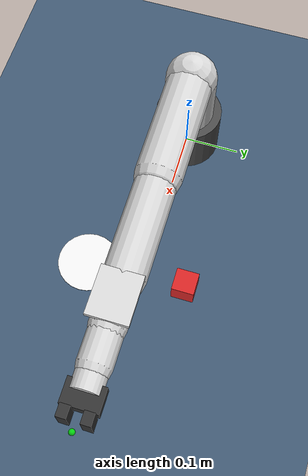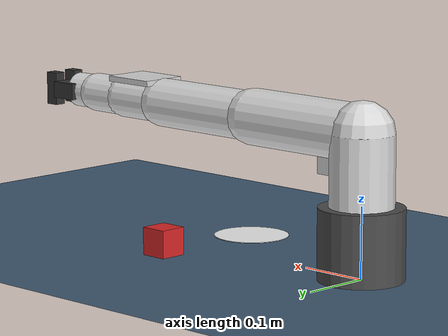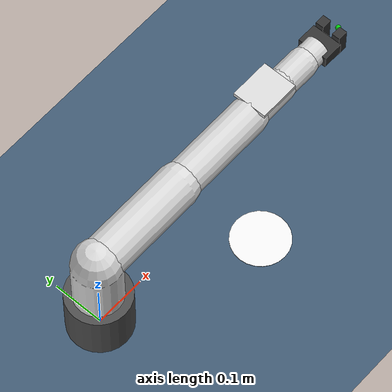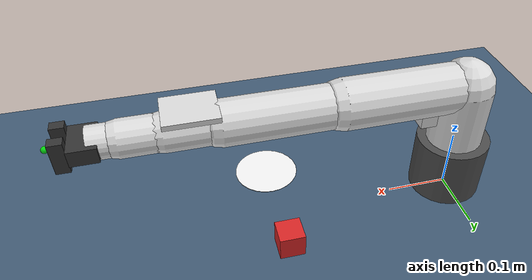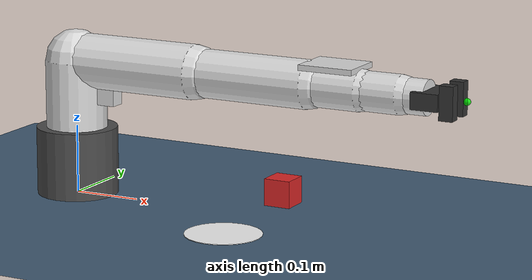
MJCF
<mujoco model="easytrainer_tutorial_world">
  <compiler angle="radian" autolimits="true"/>

  <option timestep="0.002" iterations="50" solver="Newton" tolerance="1e-8" gravity="0 0 -9.81"/>

  <visual>
    <headlight diffuse="0.6 0.6 0.6" ambient="0.3 0.3 0.3" specular="0 0 0"/>
    <rgba haze="0.15 0.25 0.35 1"/>
    <global azimuth="135" elevation="-25"/>
  </visual>

  <default>
    <default class="arm_link">
      <geom type="capsule" rgba="0.85 0.85 0.85 1" mass="0.5"
            contype="8" conaffinity="3" friction="1.0 0.005 0.001"/>
      <joint type="hinge" damping="2.0" armature="0.05" frictionloss="0.05"/>
    </default>
    <default class="arm_visual">
      <geom rgba="0.85 0.85 0.85 1" mass="0.0" contype="0" conaffinity="0"/>
    </default>
    <default class="gripper_finger">
      <!-- y두께 0.004 → 0.008로 키워 contact tolerance ↑ (정렬 살짝 어긋나도
           cube 옆면과 안정적으로 닿도록). 마찰은 그대로 — combined 마찰 행렬에서
           cube 쪽 값이 max로 적용되도록 cube friction을 별도 상향. -->
      <geom type="box" size="0.010 0.008 0.024" rgba="0.2 0.2 0.2 1" mass="0.03"
            contype="4" conaffinity="3" friction="2.0 0.10 0.005" condim="6"/>
    </default>
  </default>

  <asset>
    <texture type="skybox" builtin="gradient" rgb1="0.5 0.7 0.9" rgb2="0.1 0.2 0.4" width="512" height="512"/>
    <texture name="floor_tex" type="2d" builtin="checker" rgb1="0.2 0.3 0.4" rgb2="0.3 0.4 0.5" width="300" height="300"/>
    <material name="floor_mat" texture="floor_tex" texrepeat="2 2" reflectance="0.1"/>
    <material name="cube_mat" rgba="0.85 0.15 0.15 1"/>
    <material name="marker_mat" rgba="0.95 0.55 0.10 1"/>
    <material name="plate_mat" rgba="0.95 0.95 0.95 1" reflectance="0.05"/>
  </asset>

  <worldbody>
    <light name="top_light" pos="0 0 2.0" dir="0 0 -1" diffuse="0.6 0.6 0.6" specular="0.1 0.1 0.1"/>
    <light name="side_light" pos="0.8 0.8 1.5" dir="-0.5 -0.5 -1" diffuse="0.3 0.3 0.3"/>

    <geom name="floor" type="plane" size="3 3 0.1" material="floor_mat"
          contype="1" conaffinity="14" friction="1.0 0.005 0.001"/>

    <!-- Robot arm: simple 6DOF kinematic chain mounted on a small pedestal -->
    <body name="base" pos="0 0 0.05">
      <geom type="cylinder" size="0.06 0.05" rgba="0.3 0.3 0.3 1" mass="2.0"
            contype="0" conaffinity="0"/>

      <body name="link1" pos="0 0 0.05" gravcomp="1">
        <joint name="joint1" class="arm_link" axis="0 0 1" range="-3.14 3.14"/>
        <geom class="arm_link" fromto="0 0 0  0 0 0.10" size="0.045"/>
        <!-- Asymmetric "front marker" so joint1 yaw is visually obvious from any angle. -->
        <geom class="arm_visual" type="box" size="0.025 0.012 0.012" pos="0.045 0 0.05"
              material="marker_mat"/>

        <body name="link2" pos="0 0 0.10" gravcomp="1">
          <!-- axis (0,-1,0): + rotation lifts the upper arm UP -->
          <joint name="joint2" class="arm_link" axis="0 -1 0" range="-1.57 1.57"/>
          <geom class="arm_link" fromto="0 0 0  0.20 0 0" size="0.04"/>

          <body name="link3" pos="0.20 0 0" gravcomp="1">
            <!-- axis (0,-1,0): + rotation flexes the elbow UPWARD -->
            <joint name="joint3" class="arm_link" axis="0 -1 0" range="-2.40 0.50"/>
            <geom class="arm_link" fromto="0 0 0  0.18 0 0" size="0.035"/>

            <body name="link4" pos="0.18 0 0" gravcomp="1">
              <joint name="joint4" class="arm_link" axis="1 0 0" range="-3.14 3.14"/>
              <geom class="arm_link" fromto="0 0 0  0.08 0 0" size="0.030"/>
              <!-- Visual stripe so joint4 roll is obvious -->
              <geom class="arm_visual" type="box" size="0.040 0.034 0.004" pos="0.040 0 0.030"
                    material="marker_mat"/>

              <body name="link5" pos="0.08 0 0" gravcomp="1">
                <joint name="joint5" class="arm_link" axis="0 -1 0" range="-1.40 1.40"/>
                <geom class="arm_link" fromto="0 0 0  0.06 0 0" size="0.028"/>

                <body name="link6" pos="0.06 0 0" gravcomp="1">
                  <joint name="joint6" class="arm_link" axis="1 0 0" range="-3.14 3.14"/>
                  <geom class="arm_visual" type="cylinder" size="0.025 0.020"
                        pos="0.020 0 0" euler="0 1.5708 0" mass="0.2"/>

                  <!-- Gripper base + two fingers; fingers slide outward (+y / -y).
                       Bodies are placed offset so rest pose has fingers at y=±0.018. -->
                  <body name="gripper_base" pos="0.045 0 0" gravcomp="1">
                    <geom type="box" size="0.020 0.030 0.012" rgba="0.2 0.2 0.2 1" mass="0.1"
                          contype="0" conaffinity="0"/>
                    <site name="ee_site" pos="0.05 0 0" size="0.005" rgba="0 1 0 0.8"/>
                    <camera name="wrist_cam" pos="-0.025 0 0.045"
                            xyaxes="0 -1 0  0.5 0 0.866" fovy="65"/>

                    <body name="finger_left" pos="0.030 0.018 0" gravcomp="1">
                      <joint name="gripper" type="slide" axis="0 1 0" range="0 0.04"
                             damping="50" frictionloss="0.05"/>
                      <geom class="gripper_finger"/>
                    </body>
                    <body name="finger_right" pos="0.030 -0.018 0" gravcomp="1">
                      <joint name="gripper_mirror" type="slide" axis="0 -1 0" range="0 0.04"
                             damping="50" frictionloss="0.05"/>
                      <geom class="gripper_finger"/>
                    </body>
                  </body>
                </body>
              </body>
            </body>
          </body>
        </body>
      </body>
    </body>

    <!-- Manipulable cube on the floor, in front of the robot, within reach. -->
    <body name="cube" pos="0.30 0.08 0.02">
      <freejoint name="cube_free"/>
      <!-- friction: tangential 1.0 (그대로) / torsional 0.005 → 0.05 (×10) /
           rolling 0.001 → 0.005 (×5). 핀치 시 finger 사이에서 살짝 비틀려
           빠지는 현상을 줄이고, 잡힌 후 손목 회전에도 cube가 따라오도록. -->
      <geom name="cube_geom" type="box" size="0.020 0.020 0.020" material="cube_mat"
            contype="2" conaffinity="13" friction="1.0 0.05 0.005" condim="6" mass="0.05"/>
    </body>

    <geom name="plate" type="cylinder" size="0.055 0.0005" pos="0.30 -0.10 0.0005"
          material="plate_mat"
          contype="1" conaffinity="14" friction="1.0 0.005 0.001"/>

    <!-- Cameras (mode="targetbody" → 카메라가 항상 cube를 바라보므로 작업공간 중앙 정렬) -->
    <!-- Top view, slightly diagonal: 작업공간 위쪽에서 약간 비스듬히 내려다봄 -->
    <camera name="top_cam" pos="-0.05 -0.20 0.85" mode="targetbody" target="cube" fovy="55"/>
    <!-- Front view: 로봇 앞쪽 책상 높이에서 cube/그리퍼를 바라봄 -->
    <camera name="front_cam" pos="0.85 0.00 0.18" mode="targetbody" target="cube" fovy="50"/>
  </worldbody>

  <!-- Mirror gripper joints so a single command drives both fingers symmetrically -->
  <equality>
    <joint joint1="gripper" joint2="gripper_mirror" polycoef="0 1 0 0 0"/>
  </equality>

  <!-- Position actuators: control directly maps to target qpos -->
  <actuator>
    <position name="act_joint1" joint="joint1" kp="80"  kv="6"  ctrlrange="-3.14 3.14"/>
    <position name="act_joint2" joint="joint2" kp="120" kv="10" ctrlrange="-1.57 1.57"/>
    <position name="act_joint3" joint="joint3" kp="100" kv="8"  ctrlrange="-2.40 0.50"/>
    <position name="act_joint4" joint="joint4" kp="60"  kv="5"  ctrlrange="-3.14 3.14"/>
    <position name="act_joint5" joint="joint5" kp="50"  kv="4"  ctrlrange="-1.40 1.40"/>
    <position name="act_joint6" joint="joint6" kp="40"  kv="3"  ctrlrange="-3.14 3.14"/>
    <!-- kp 200 → 400 (×2): cube를 잡고 들어올릴 때 손가락이 더 강하게 압착해
         마찰력을 충분히 빌드업한다. kv도 비례 상향(15 → 30)해 진동 방지. -->
    <position name="act_gripper" joint="gripper" kp="400" kv="30" ctrlrange="0 0.04"/>
  </actuator>

  <keyframe>
    <key name="home"
         qpos="0 1.21 -1.70 0 -1.08 0   0 0   0.30 0.08 0.02 1 0 0 0"
         ctrl="0 1.21 -1.70 0 -1.08 0   0"/>
  </keyframe>
</mujoco>
